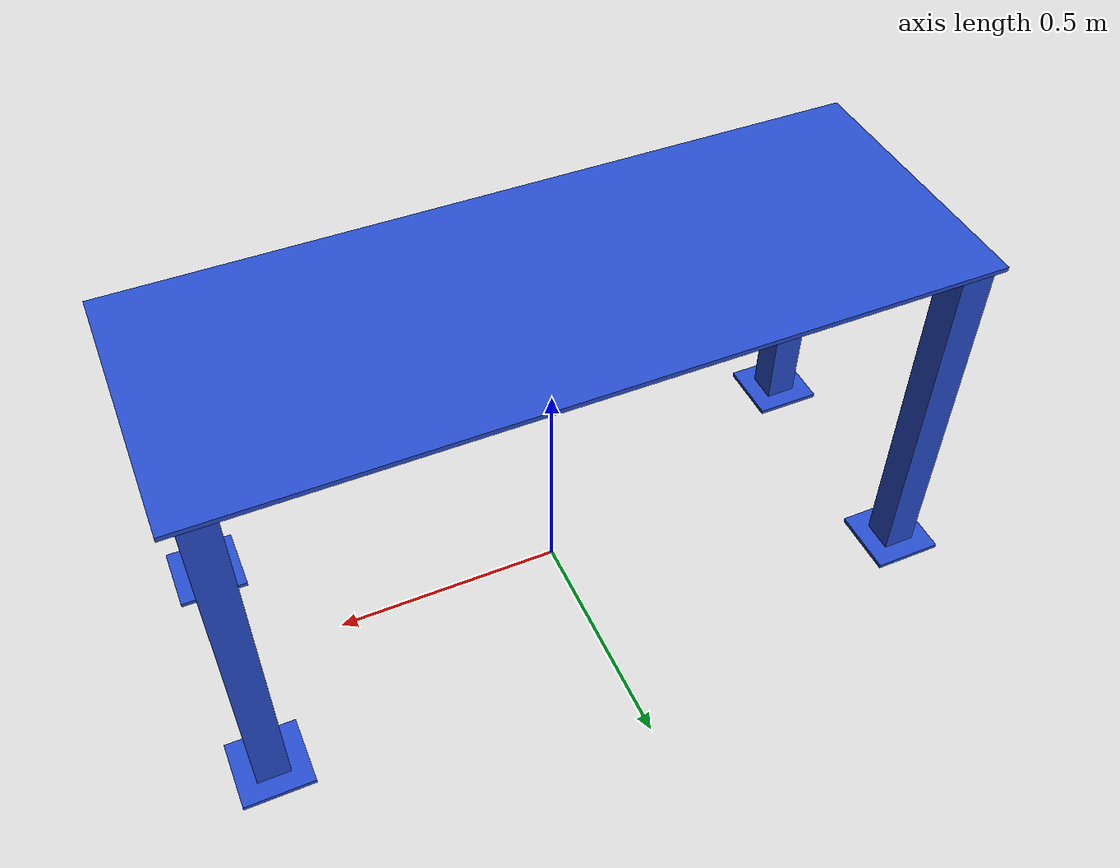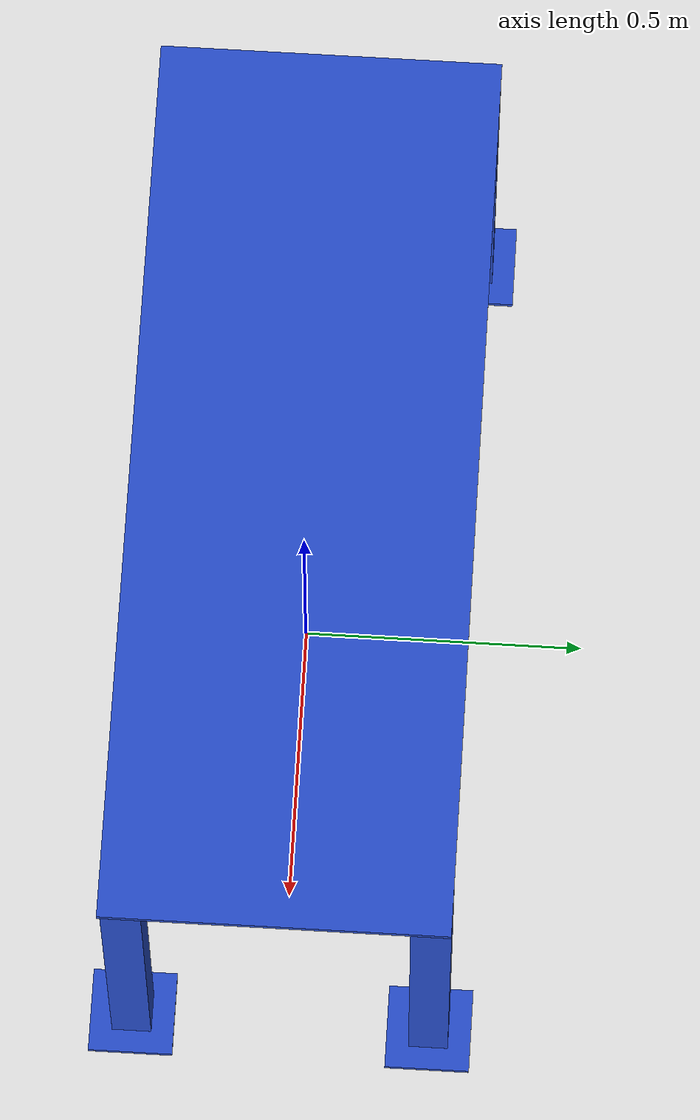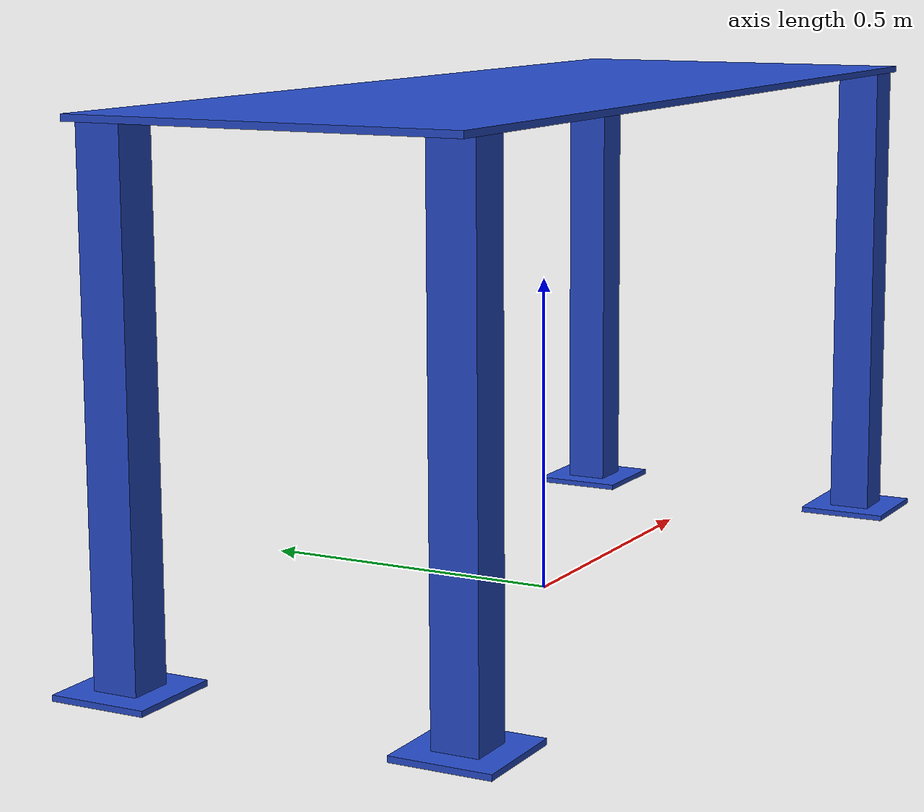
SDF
<?xml version="1.0" ?>
<sdf version="1.4">
  <model name="blue_table">
    <static>true</static>
    <link name="link">
      <collision name="surface">
        <pose>0 0 0.795 0 0 0</pose>
        <geometry>
          <box>
            <size>1.6 0.6 0.01</size>
          </box>
        </geometry>
      </collision>
      <visual name="surface">
        <pose>0 0 0.795 0 0 0</pose>
        <geometry>
          <box>
            <size>1.6 0.6 0.01</size>
          </box>
        </geometry>
        <material>
          <script>
            <uri>file://media/materials/scripts/gazebo.material</uri>
            <name>Gazebo/Blue</name>
          </script>
        </material>
      </visual>

      <collision name="front_r_pad">
        <pose>0.735 0.265 0.0045 0 0 0</pose>
        <geometry>
          <box>
            <size>0.15 0.15 0.009</size>
          </box>
        </geometry>
      </collision>
      <visual name="front_r_pad">
        <pose>0.735 0.265 0.0045 0 0 0</pose>
        <geometry>
          <box>
            <size>0.15 0.15 0.009</size>
          </box>
        </geometry>
        <material>
          <script>
            <uri>file://media/materials/scripts/gazebo.material</uri>
            <name>Gazebo/Blue</name>
          </script>
        </material>
      </visual>

      <collision name="front_l_pad">
        <pose>-0.735 0.265 0.0045 0 0 0</pose>
        <geometry>
          <box>
            <size>0.15 0.15 0.009</size>
          </box>
        </geometry>
      </collision>
      <visual name="front_l_pad">
        <pose>-0.735 0.265 0.0045 0 0 0</pose>
        <geometry>
          <box>
            <size>0.15 0.15 0.009</size>
          </box>
        </geometry>
        <material>
          <script>
            <uri>file://media/materials/scripts/gazebo.material</uri>
            <name>Gazebo/Blue</name>
          </script>
        </material>
      </visual>

      <collision name="back_r_pad">
        <pose>0.735 -0.265 0.0045 0 0 0</pose>
        <geometry>
          <box>
            <size>0.15 0.15 0.009</size>
          </box>
        </geometry>
      </collision>
      <visual name="back_r_pad">
        <pose>0.735 -0.265 0.0045 0 0 0</pose>
        <geometry>
          <box>
            <size>0.15 0.15 0.009</size>
          </box>
        </geometry>
        <material>
          <script>
            <uri>file://media/materials/scripts/gazebo.material</uri>
            <name>Gazebo/Blue</name>
          </script>
        </material>
      </visual>

      <collision name="back_l_pad">
        <pose>-0.735 -0.265 0.0045 0 0 0</pose>
        <geometry>
          <box>
            <size>0.15 0.15 0.009</size>
          </box>
        </geometry>
      </collision>
      <visual name="back_l_pad">
        <pose>-0.735 -0.265 0.0045 0 0 0</pose>
        <geometry>
          <box>
            <size>0.15 0.15 0.009</size>
          </box>
        </geometry>
        <material>
          <script>
            <uri>file://media/materials/scripts/gazebo.material</uri>
            <name>Gazebo/Blue</name>
          </script>
        </material>
      </visual>

      <collision name="front_r_leg">
        <pose>0.735 0.265 0.3995 0 0 0</pose>
        <geometry>
          <box>
            <size>0.07 0.07 0.781</size>
          </box>
        </geometry>
      </collision>
      <visual name="front_r_leg">
        <pose>0.735 0.265 0.3995 0 0 0</pose>
        <geometry>
          <box>
            <size>0.07 0.07 0.781</size>
          </box>
        </geometry>
        <material>
          <script>
            <uri>file://media/materials/scripts/gazebo.material</uri>
            <name>Gazebo/Blue</name>
          </script>
        </material>
      </visual>

      <collision name="front_l_leg">
        <pose>-0.735 0.265 0.3995 0 0 0</pose>
        <geometry>
          <box>
            <size>0.07 0.07 0.781</size>
          </box>
        </geometry>
      </collision>
      <visual name="front_l_leg">
        <pose>-0.735 0.265 0.3995 0 0 0</pose>
        <geometry>
          <box>
            <size>0.07 0.07 0.781</size>
          </box>
        </geometry>
        <material>
          <script>
            <uri>file://media/materials/scripts/gazebo.material</uri>
            <name>Gazebo/Blue</name>
          </script>
        </material>
      </visual>

      <collision name="back_r_leg">
        <pose>0.735 -0.265 0.3995 0 0 0</pose>
        <geometry>
          <box>
            <size>0.07 0.07 0.781</size>
          </box>
        </geometry>
      </collision>
      <visual name="back_r_leg">
        <pose>0.735 -0.265 0.3995 0 0 0</pose>
        <geometry>
          <box>
            <size>0.07 0.07 0.781</size>
          </box>
        </geometry>
        <material>
          <script>
            <uri>file://media/materials/scripts/gazebo.material</uri>
            <name>Gazebo/Blue</name>
          </script>
        </material>
      </visual>

      <collision name="back_l_leg">
        <pose>-0.735 -0.265 0.3995 0 0 0</pose>
        <geometry>
          <box>
            <size>0.07 0.07 0.781</size>
          </box>
        </geometry>
      </collision>
      <visual name="back_l_leg">
        <pose>-0.735 -0.265 0.3995 0 0 0</pose>
        <geometry>
          <box>
            <size>0.07 0.07 0.781</size>
          </box>
        </geometry>
        <material>
          <script>
            <uri>file://media/materials/scripts/gazebo.material</uri>
            <name>Gazebo/Blue</name>
          </script>
        </material>
      </visual>
    </link>
  </model>
</sdf>
